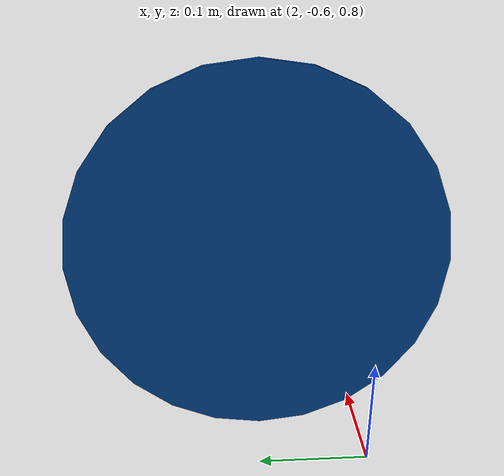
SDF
<sdf version="1.7">
 <world name="default">
  <model name="ground_plane">
   <static>1</static>
   <link name="link">
    <collision name="collision">
     <geometry><plane><normal>0 0 1</normal><size>100 100</size></plane></geometry>
     <surface>
      <contact><collide_bitmask>65535</collide_bitmask></contact>
      <friction><ode><mu>100</mu><mu2>50</mu2></ode></friction>
     </surface>
    </collision>
    <visual name="visual">
     <cast_shadows>0</cast_shadows>
     <geometry><plane><normal>0 0 1</normal><size>100 100</size></plane></geometry>
     <material>
      <script><uri>file://media/materials/scripts/gazebo.material</uri><name>Gazebo/Grey</name></script>
     </material>
    </visual>
   </link>
  </model>
  <light name="sun" type="directional">
   <pose>0 0 10 0 -0 0</pose>
   <diffuse>0.8 0.8 0.8 1</diffuse>
   <specular>0.2 0.2 0.2 1</specular>
   <attenuation>
    <range>1000</range>
    <constant>0.9</constant>
    <linear>0.01</linear>
    <quadratic>0.001</quadratic>
   </attenuation>
   <direction>-0.5 0.1 -0.9</direction>
   <spot><inner_angle>0</inner_angle><outer_angle>0</outer_angle><falloff>0</falloff></spot>
  </light>
  <physics name="default_physics" default="0" type="ode">
   <max_step_size>0.01</max_step_size>
   <real_time_factor>1</real_time_factor>
   <real_time_update_rate>100</real_time_update_rate>
   <ode>
    <solver>
     <type>quick</type>
     <iters>50</iters>
     <sor>1</sor>
     <use_dynamic_moi_rescaling>0</use_dynamic_moi_rescaling>
    </solver>
    <constraints>
     <cfm>0</cfm>
     <erp>0.2</erp>
     <contact_max_correcting_vel>100</contact_max_correcting_vel>
     <contact_surface_layer>0.001</contact_surface_layer>
    </constraints>
   </ode>
  </physics>
  <gravity>0 0 -9.8</gravity>
  <magnetic_field>6e-06 2.3e-05 -4.2e-05</magnetic_field>
  <atmosphere type="adiabatic"/>
  <scene><ambient>0.4 0.4 0.4 1</ambient><background>0.7 0.7 0.7 1</background><shadows>1</shadows></scene>
  <spherical_coordinates>
   <surface_model>EARTH_WGS84</surface_model>
   <latitude_deg>0</latitude_deg>
   <longitude_deg>0</longitude_deg>
   <elevation>0</elevation>
   <heading_deg>0</heading_deg>
  </spherical_coordinates>
  <model name="circular_object">
   <link name="link_0">
    <inertial>
     <mass>1</mass>
     <inertia><ixx>0.145833</ixx><ixy>0</ixy><ixz>0</ixz><iyy>0.145833</iyy><iyz>0</iyz><izz>0.125</izz></inertia>
    </inertial>
    <gravity>0</gravity>
    <visual name="visual">
     <geometry><cylinder><radius>0.15</radius><length>0.01</length></cylinder></geometry>
     <material>
      <lighting>1</lighting>
      <script><uri>file://media/materials/scripts/gazebo.material</uri><name>Gazebo/Grey</name></script>
      <shader type="pixel"><normal_map>__default__</normal_map></shader>
      <ambient>0 0.235 0.51 1</ambient>
      <diffuse>0 0.235 0.51 1</diffuse>
      <specular>0 0.235 0.51 1</specular>
      <emissive>0 0.235 0.51 1</emissive>
     </material>
    </visual>
    <collision name="collision">
     <geometry><cylinder><radius>0.15</radius><length>0.01</length></cylinder></geometry>
     <surface>
      <friction>
       <ode><mu>1</mu><mu2>1</mu2><fdir1>0 0 0</fdir1><slip1>0</slip1><slip2>0</slip2></ode>
       <torsional>
        <coefficient>1</coefficient>
        <patch_radius>0</patch_radius>
        <surface_radius>0</surface_radius>
        <use_patch_radius>1</use_patch_radius>
        <ode><slip>0</slip></ode>
       </torsional>
      </friction>
      <bounce><restitution_coefficient>0</restitution_coefficient><threshold>1e+06</threshold></bounce>
      <contact>
       <collide_without_contact>0</collide_without_contact>
       <collide_without_contact_bitmask>1</collide_without_contact_bitmask>
       <collide_bitmask>1</collide_bitmask>
       <ode>
        <soft_cfm>0</soft_cfm>
        <soft_erp>0.2</soft_erp>
        <kp>1e+13</kp>
        <kd>1</kd>
        <max_vel>0.01</max_vel>
        <min_depth>0</min_depth>
       </ode>
       <bullet>
        <split_impulse>1</split_impulse>
        <split_impulse_penetration_threshold>-0.01</split_impulse_penetration_threshold>
        <soft_cfm>0</soft_cfm>
        <soft_erp>0.2</soft_erp>
        <kp>1e+13</kp>
        <kd>1</kd>
       </bullet>
      </contact>
     </surface>
    </collision>
   </link>
   <static>0</static>
   <pose>2 -0.5 1 0 1.5707 0</pose>
  </model>
 </world>
</sdf>
